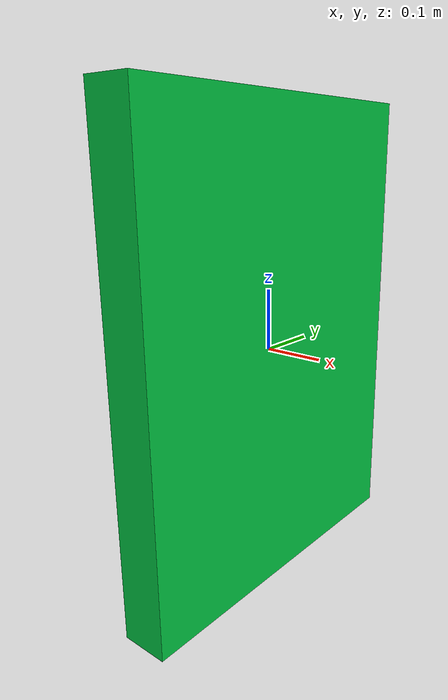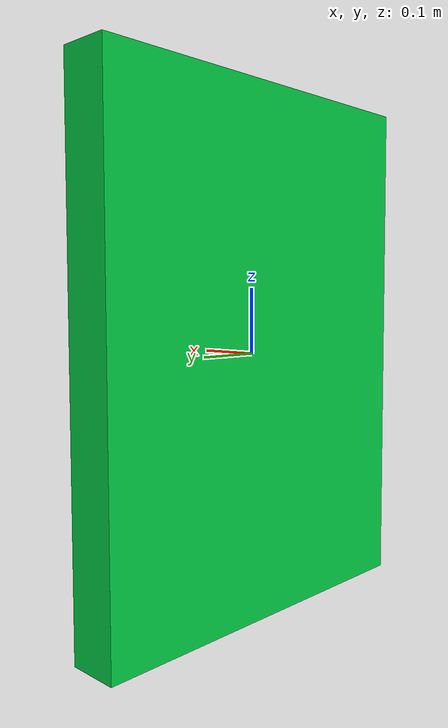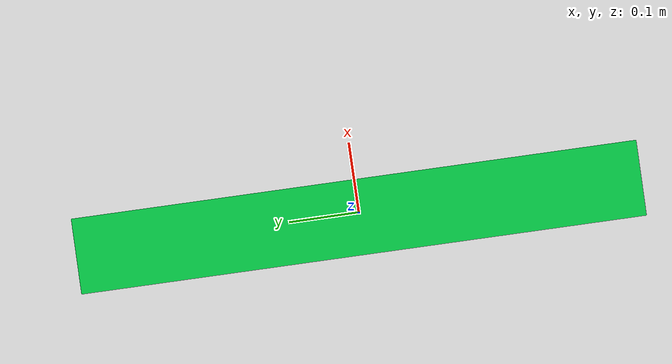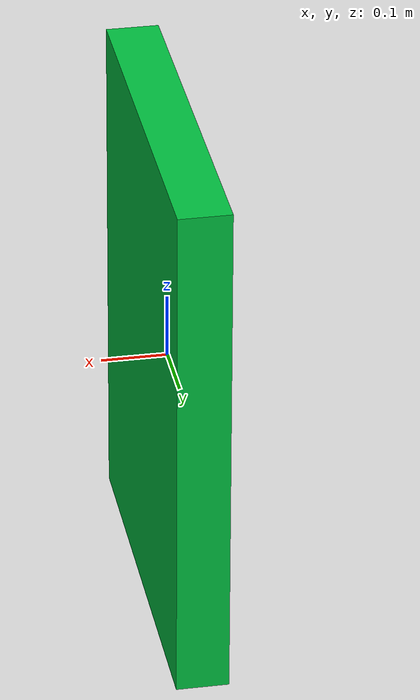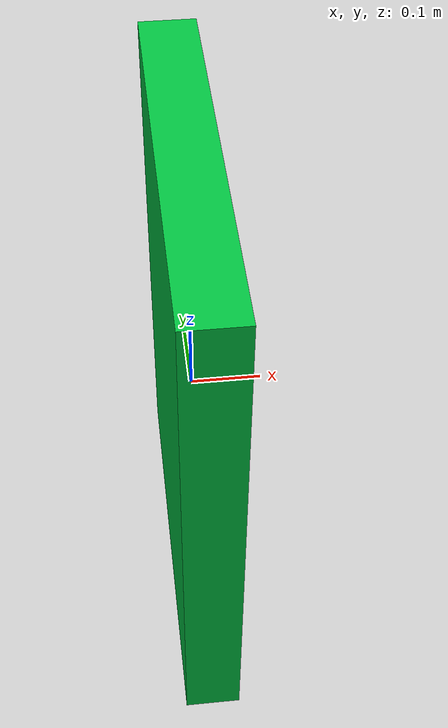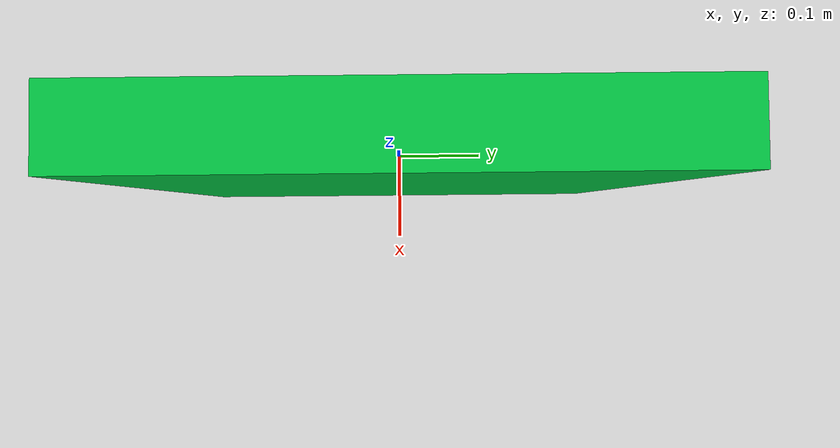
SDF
<?xml version="1.0"?>
<sdf version="1.8">
  <model name="tof_tall_panel">
    <static>true</static>
    <link name="link">
      <collision name="collision">
        <geometry>
          <box>
            <size>0.08 0.60 0.80</size>
          </box>
        </geometry>
      </collision>
      <visual name="visual">
        <geometry>
          <box>
            <size>0.08 0.60 0.80</size>
          </box>
        </geometry>
        <material>
          <ambient>0.00 0.75 0.25 1</ambient>
          <diffuse>0.00 0.75 0.25 1</diffuse>
        </material>
      </visual>
    </link>
  </model>
</sdf>
